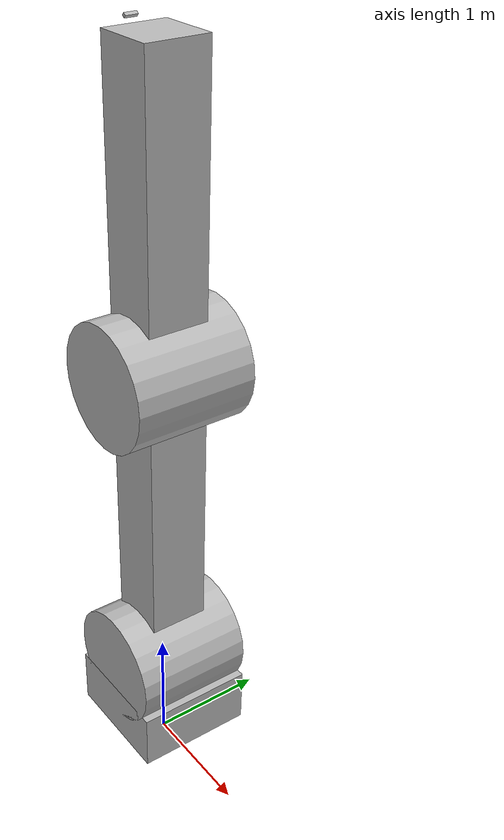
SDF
<sdf version="1.6">
<model name="robot" canonical_link='base_link'>
  <static>false</static>
  <pose relative_to='world'>0 0 0 0 0 0</pose>
  <link name="base_link">
    <pose relative_to='__model__'>0 0 0.5 0 0 0</pose>
    <collision name='base_link collision'>
      <geometry>
        <box>
          <size>1 1 0.5</size>
        </box>
      </geometry>
    </collision>
    <visual name='base_link visual'>
      <geometry>
        <box>
          <size>1 1 0.5</size>
        </box>
      </geometry>
    </visual>
    <material>
      <script>
        <uri>file://media/materials/scripts/gazebo.material</uri>
        <name>Gazebo/Red</name>
      </script>
      <ambient>0.783537791521566 0.09305896283800832 0.2663556047920505 1</ambient>
      <diffuse>0.783537791521566 0.09305896283800832 0.2663556047920505 1</diffuse>
      <specular>0.1 0.1 0.1 1</specular>
      <emissive>0 0 0 1</emissive>
    </material>
    <inertial>
      <mass>1</mass>
      <inertia>
        <ixx>0.16666666666666666</ixx>
        <ixy>0</ixy>
        <ixz>0</ixz>
        <iyy>0.16666666666666666</iyy>
        <iyz>0</iyz>
        <izz>0.16666666666666666</izz>
      </inertia>
    </inertial>
  </link>
  <link name="cylinder1">
    <pose relative_to='base_link'>0 0 0.49921830571811965 1.5707963267948963 0 0</pose>
    <collision name='cylinder1 collision'>
      <geometry>
        <cylinder>
          <radius>0.5</radius>
          <length>1</length>
        </cylinder>
      </geometry>
    </collision>
    <visual name='cylinder1 visual'>
      <geometry>
        <cylinder>
          <radius>0.5</radius>
          <length>1</length>
        </cylinder>
      </geometry>
    </visual>
    <material>
      <script>
        <uri>file://media/materials/scripts/gazebo.material</uri>
        <name>Gazebo/Red</name>
      </script>
      <ambient>0.008568125615105716 0.9734452903978066 0.22322795730611386 1</ambient>
      <diffuse>0.008568125615105716 0.9734452903978066 0.22322795730611386 1</diffuse>
      <specular>0.1 0.1 0.1 1</specular>
      <emissive>0 0 0 1</emissive>
    </material>
    <inertial>
      <mass>1</mass>
      <inertia>
        <ixx>0.3333333333333333</ixx>
        <ixy>0</ixy>
        <ixz>0</ixz>
        <iyy>0.5</iyy>
        <iyz>0</iyz>
        <izz>0.3333333333333333</izz>
      </inertia>
    </inertial>
  </link>
  <joint name="base_link_to_cylinder1" type="revolute">
    <pose relative_to='cylinder1'>0 0 0 0 0 0 </pose>
    <parent>base_link</parent>
    <child>cylinder1</child>
    <axis>
        <xyz expressed_in='cylinder1'>0 0 1</xyz>
        <limit>            <lower>-1</lower>            <upper>1</upper>        </limit>
    </axis>
  </joint>
  <link name="cube2">
    <pose relative_to='cylinder1'>0 1.3965994545275549 2.7755575615628914e-16 -1.5707963267948963 0 0</pose>
    <collision name='cube2 collision'>
      <geometry>
        <box>
          <size>0.5 0.5 2</size>
        </box>
      </geometry>
    </collision>
    <visual name='cube2 visual'>
      <geometry>
        <box>
          <size>0.5 0.5 2</size>
        </box>
      </geometry>
    </visual>
    <material>
      <script>
        <uri>file://media/materials/scripts/gazebo.material</uri>
        <name>Gazebo/Red</name>
      </script>
      <ambient>0.21952619971859377 0.07036009568874305 0.2917706498067336 1</ambient>
      <diffuse>0.21952619971859377 0.07036009568874305 0.2917706498067336 1</diffuse>
      <specular>0.1 0.1 0.1 1</specular>
      <emissive>0 0 0 1</emissive>
    </material>
    <inertial>
      <mass>1</mass>
      <inertia>
        <ixx>0.16666666666666666</ixx>
        <ixy>0</ixy>
        <ixz>0</ixz>
        <iyy>0.16666666666666666</iyy>
        <iyz>0</iyz>
        <izz>0.16666666666666666</izz>
      </inertia>
    </inertial>
  </link>
  <joint name="cylinder1_to_cube2" type="fixed">
    <pose relative_to='cube2'>0 0 0 0 0 0 </pose>
    <parent>cylinder1</parent>
    <child>cube2</child>
  </joint>
  <link name="cylinder1-copy0">
    <pose relative_to='cube2'>0 -3.255161796279601e-17 1.3082192344265438 1.5707963267948963 0 0</pose>
    <collision name='cylinder1-copy0 collision'>
      <geometry>
        <cylinder>
          <radius>0.5</radius>
          <length>1</length>
        </cylinder>
      </geometry>
    </collision>
    <visual name='cylinder1-copy0 visual'>
      <geometry>
        <cylinder>
          <radius>0.5</radius>
          <length>1</length>
        </cylinder>
      </geometry>
    </visual>
    <material>
      <script>
        <uri>file://media/materials/scripts/gazebo.material</uri>
        <name>Gazebo/Red</name>
      </script>
      <ambient>0.008568125615105716 0.9734452903978066 0.22322795730611386 1</ambient>
      <diffuse>0.008568125615105716 0.9734452903978066 0.22322795730611386 1</diffuse>
      <specular>0.1 0.1 0.1 1</specular>
      <emissive>0 0 0 1</emissive>
    </material>
    <inertial>
      <mass>1</mass>
      <inertia>
        <ixx>0.3333333333333333</ixx>
        <ixy>0</ixy>
        <ixz>0</ixz>
        <iyy>0.5</iyy>
        <iyz>0</iyz>
        <izz>0.3333333333333333</izz>
      </inertia>
    </inertial>
  </link>
  <joint name="cube2_to_cylinder1-copy0" type="revolute">
    <pose relative_to='cylinder1-copy0'>0 0 0 0 0 0 </pose>
    <parent>cube2</parent>
    <child>cylinder1-copy0</child>
    <axis>
        <xyz expressed_in='cylinder1-copy0'>0 0 1</xyz>
        <limit>            <lower>-1</lower>            <upper>1</upper>        </limit>
    </axis>
  </joint>
  <link name="cube2-copy0">
    <pose relative_to='cylinder1-copy0'>0 1.3965994545275549 2.7755575615628914e-16 -1.5707963267948963 0 0</pose>
    <collision name='cube2-copy0 collision'>
      <geometry>
        <box>
          <size>0.5 0.5 2</size>
        </box>
      </geometry>
    </collision>
    <visual name='cube2-copy0 visual'>
      <geometry>
        <box>
          <size>0.5 0.5 2</size>
        </box>
      </geometry>
    </visual>
    <material>
      <script>
        <uri>file://media/materials/scripts/gazebo.material</uri>
        <name>Gazebo/Red</name>
      </script>
      <ambient>0.21952619971859377 0.07036009568874305 0.2917706498067336 1</ambient>
      <diffuse>0.21952619971859377 0.07036009568874305 0.2917706498067336 1</diffuse>
      <specular>0.1 0.1 0.1 1</specular>
      <emissive>0 0 0 1</emissive>
    </material>
    <inertial>
      <mass>1</mass>
      <inertia>
        <ixx>0.16666666666666666</ixx>
        <ixy>0</ixy>
        <ixz>0</ixz>
        <iyy>0.16666666666666666</iyy>
        <iyz>0</iyz>
        <izz>0.16666666666666666</izz>
      </inertia>
    </inertial>
  </link>
  <joint name="cylinder1-copy0_to_cube2-copy0" type="fixed">
    <pose relative_to='cube2-copy0'>0 0 0 0 0 0 </pose>
    <parent>cylinder1-copy0</parent>
    <child>cube2-copy0</child>
  </joint>
  <link name="camera_link">
    <pose relative_to='cube2-copy0'>-0.2929320622248368 0.001887887757991127 1.04034649007794 1.8521237935984154e-16 0.6800000000000002 -1.727159822628795e-16</pose>
    <collision name='camera_link collision'>
      <geometry>
        <box>
          <size>0.0254 0.1 0.0254</size>
        </box>
      </geometry>
    </collision>
    <visual name='camera_link visual'>
      <geometry>
        <box>
          <size>0.0254 0.1 0.0254</size>
        </box>
      </geometry>
    </visual>
    <material>
      <script>
        <uri>file://media/materials/scripts/gazebo.material</uri>
        <name>Gazebo/Red</name>
      </script>
      <ambient>0.8468732315065057 0.8468732315065057 0.8468732315065057 1</ambient>
      <diffuse>0.8468732315065057 0.8468732315065057 0.8468732315065057 1</diffuse>
      <specular>0.1 0.1 0.1 1</specular>
      <emissive>0 0 0 1</emissive>
    </material>
    <inertial>
      <mass>1</mass>
      <inertia>
        <ixx>0.16666666666666666</ixx>
        <ixy>0</ixy>
        <ixz>0</ixz>
        <iyy>0.16666666666666666</iyy>
        <iyz>0</iyz>
        <izz>0.16666666666666666</izz>
      </inertia>
    </inertial>

    <sensor name="camera_link_realsense_camera" type="camera">
        <always_on>true</always_on>
        <visualize>true</visualize>
        <update_rate>30</update_rate>
        <camera name="camera_link_camera">
            <horizontal_fov>1.3962634</horizontal_fov>
            <image>
                <width>1920</width>
                <height>1080</height>
                <format>R8G8B8</format>
            </image>
            <clip>
                <near>0.105</near>
                <far>10</far>
            </clip>
            <noise>
                <type>gaussian</type>
                <mean>0</mean>
                <stddev>0.007</stddev>
            </noise>
        </camera>
        <plugin name="camera_driver_for_camera_link" filename="libgazebo_ros_camera.so">
            <ros>
            </ros>
        </plugin>
    </sensor>
  </link>
  <joint name="cube2-copy0_to_camera_link" type="fixed">
    <pose relative_to='camera_link'>0 0 0 0 0 0 </pose>
    <parent>cube2-copy0</parent>
    <child>camera_link</child>
  </joint>
    <plugin name="joint_state_publisher" filename="libgazebo_ros_joint_state_publisher.so">
        <ros>
            <remapping>~/out:=/joint_states</remapping>
        </ros>
        <update_rate>5</update_rate>
       <joint_name>base_link_to_cylinder1</joint_name>
       <joint_name>cube2_to_cylinder1-copy0</joint_name>
    </plugin>
</model>
</sdf>
